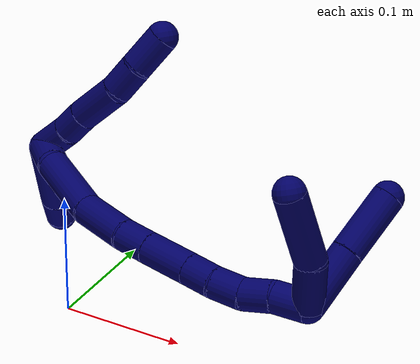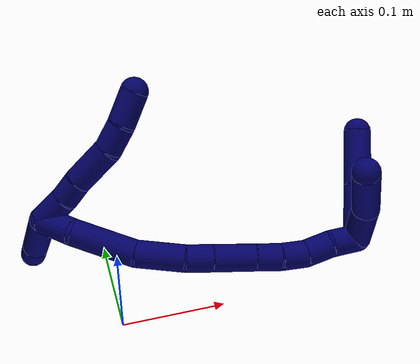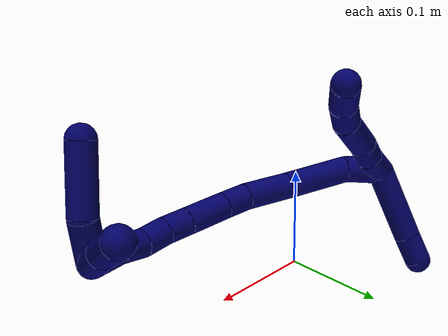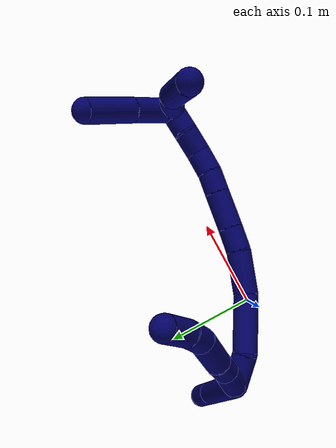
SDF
<sdf version="1.7">
 <world name="default">
  <model name="7">
   <static>0</static>
   <link name="7">
    <collision name="collision-cylinder-e_1_2_8">
     <pose>0.01378 -0.002626 0.005682 0.432896 1.14446 0.281402</pose>
     <geometry><cylinder><radius>0.0125</radius><length>0.03027</length></cylinder></geometry>
     <surface>
      <friction><ode><mu>1.16</mu><mu2>1.16</mu2><slip1>0</slip1><slip2>0</slip2></ode></friction>
      <contact><ode><kp>1e+06</kp><kd>1</kd><max_vel>0</max_vel><min_depth>0.001</min_depth></ode></contact>
     </surface>
    </collision>
    <visual name="visual-cylinder-e_1_2_8">
     <pose>0.01378 -0.002626 0.005682 0.432896 1.14446 0.281402</pose>
     <geometry><cylinder><radius>0.0125</radius><length>0.03027</length></cylinder></geometry>
     <material><ambient>0.003922 0 0.403922 1</ambient></material>
    </visual>
    <collision name="collision-cylinder-e_2_8_9">
     <pose>0.037048 -0.006541 0.016738 0.235481 1.04325 0.135755</pose>
     <geometry><cylinder><radius>0.0125</radius><length>0.02196</length></cylinder></geometry>
     <surface>
      <friction><ode><mu>1.16</mu><mu2>1.16</mu2><slip1>0</slip1><slip2>0</slip2></ode></friction>
      <contact><ode><kp>1e+06</kp><kd>1</kd><max_vel>0</max_vel><min_depth>0.001</min_depth></ode></contact>
     </surface>
    </collision>
    <visual name="visual-cylinder-e_2_8_9">
     <pose>0.037048 -0.006541 0.016738 0.235481 1.04325 0.135755</pose>
     <geometry><cylinder><radius>0.0125</radius><length>0.02196</length></cylinder></geometry>
     <material><ambient>0.003922 0 0.403922 1</ambient></material>
    </visual>
    <collision name="collision-cylinder-e_3_9_10">
     <pose>0.06524 -0.010865 0.030277 0.355898 1.13503 0.228303</pose>
     <geometry><cylinder><radius>0.0125</radius><length>0.041266</length></cylinder></geometry>
     <surface>
      <friction><ode><mu>1.16</mu><mu2>1.16</mu2><slip1>0</slip1><slip2>0</slip2></ode></friction>
      <contact><ode><kp>1e+06</kp><kd>1</kd><max_vel>0</max_vel><min_depth>0.001</min_depth></ode></contact>
     </surface>
    </collision>
    <visual name="visual-cylinder-e_3_9_10">
     <pose>0.06524 -0.010865 0.030277 0.355898 1.13503 0.228303</pose>
     <geometry><cylinder><radius>0.0125</radius><length>0.041266</length></cylinder></geometry>
     <material><ambient>0.003922 0 0.403922 1</ambient></material>
    </visual>
    <collision name="collision-cylinder-e_4_10_11">
     <pose>0.094259 -0.013683 0.046057 -0.028509 0.93451 -0.014384</pose>
     <geometry><cylinder><radius>0.0125</radius><length>0.025647</length></cylinder></geometry>
     <surface>
      <friction><ode><mu>1.16</mu><mu2>1.16</mu2><slip1>0</slip1><slip2>0</slip2></ode></friction>
      <contact><ode><kp>1e+06</kp><kd>1</kd><max_vel>0</max_vel><min_depth>0.001</min_depth></ode></contact>
     </surface>
    </collision>
    <visual name="visual-cylinder-e_4_10_11">
     <pose>0.094259 -0.013683 0.046057 -0.028509 0.93451 -0.014384</pose>
     <geometry><cylinder><radius>0.0125</radius><length>0.025647</length></cylinder></geometry>
     <material><ambient>0.003922 0 0.403922 1</ambient></material>
    </visual>
    <collision name="collision-cylinder-e_5_11_6">
     <pose>0.116257 -0.010536 0.063315 -0.29496 0.859147 -0.135901</pose>
     <geometry><cylinder><radius>0.0125</radius><length>0.030856</length></cylinder></geometry>
     <surface>
      <friction><ode><mu>1.16</mu><mu2>1.16</mu2><slip1>0</slip1><slip2>0</slip2></ode></friction>
      <contact><ode><kp>1e+06</kp><kd>1</kd><max_vel>0</max_vel><min_depth>0.001</min_depth></ode></contact>
     </surface>
    </collision>
    <visual name="visual-cylinder-e_5_11_6">
     <pose>0.116257 -0.010536 0.063315 -0.29496 0.859147 -0.135901</pose>
     <geometry><cylinder><radius>0.0125</radius><length>0.030856</length></cylinder></geometry>
     <material><ambient>0.003922 0 0.403922 1</ambient></material>
    </visual>
    <collision name="collision-cylinder-e_1_2_12">
     <pose>-0.014453 0.023588 -0.023024 -2.34409 -0.41322 0.923266</pose>
     <geometry><cylinder><radius>0.0125</radius><length>0.071983</length></cylinder></geometry>
     <surface>
      <friction><ode><mu>1.16</mu><mu2>1.16</mu2><slip1>0</slip1><slip2>0</slip2></ode></friction>
      <contact><ode><kp>1e+06</kp><kd>1</kd><max_vel>0</max_vel><min_depth>0.001</min_depth></ode></contact>
     </surface>
    </collision>
    <visual name="visual-cylinder-e_1_2_12">
     <pose>-0.014453 0.023588 -0.023024 -2.34409 -0.41322 0.923266</pose>
     <geometry><cylinder><radius>0.0125</radius><length>0.071983</length></cylinder></geometry>
     <material><ambient>0.003922 0 0.403922 1</ambient></material>
    </visual>
    <collision name="collision-cylinder-e_2_12_5">
     <pose>-0.034198 0.056798 -0.054746 -2.30582 -0.387426 0.832014</pose>
     <geometry><cylinder><radius>0.0125</radius><length>0.028017</length></cylinder></geometry>
     <surface>
      <friction><ode><mu>1.16</mu><mu2>1.16</mu2><slip1>0</slip1><slip2>0</slip2></ode></friction>
      <contact><ode><kp>1e+06</kp><kd>1</kd><max_vel>0</max_vel><min_depth>0.001</min_depth></ode></contact>
     </surface>
    </collision>
    <visual name="visual-cylinder-e_2_12_5">
     <pose>-0.034198 0.056798 -0.054746 -2.30582 -0.387426 0.832014</pose>
     <geometry><cylinder><radius>0.0125</radius><length>0.028017</length></cylinder></geometry>
     <material><ambient>0.003922 0 0.403922 1</ambient></material>
    </visual>
    <collision name="collision-cylinder-e_1_2_13">
     <pose>0.010403 -0.011668 -0.006465 2.07676 0.662362 1.05656</pose>
     <geometry><cylinder><radius>0.0125</radius><length>0.033832</length></cylinder></geometry>
     <surface>
      <friction><ode><mu>1.16</mu><mu2>1.16</mu2><slip1>0</slip1><slip2>0</slip2></ode></friction>
      <contact><ode><kp>1e+06</kp><kd>1</kd><max_vel>0</max_vel><min_depth>0.001</min_depth></ode></contact>
     </surface>
    </collision>
    <visual name="visual-cylinder-e_1_2_13">
     <pose>0.010403 -0.011668 -0.006465 2.07676 0.662362 1.05656</pose>
     <geometry><cylinder><radius>0.0125</radius><length>0.033832</length></cylinder></geometry>
     <material><ambient>0.003922 0 0.403922 1</ambient></material>
    </visual>
    <collision name="collision-cylinder-e_2_13_14">
     <pose>0.041294 -0.035834 -0.030307 2.51806 0.763487 1.78869</pose>
     <geometry><cylinder><radius>0.0125</radius><length>0.059262</length></cylinder></geometry>
     <surface>
      <friction><ode><mu>1.16</mu><mu2>1.16</mu2><slip1>0</slip1><slip2>0</slip2></ode></friction>
      <contact><ode><kp>1e+06</kp><kd>1</kd><max_vel>0</max_vel><min_depth>0.001</min_depth></ode></contact>
     </surface>
    </collision>
    <visual name="visual-cylinder-e_2_13_14">
     <pose>0.041294 -0.035834 -0.030307 2.51806 0.763487 1.78869</pose>
     <geometry><cylinder><radius>0.0125</radius><length>0.059262</length></cylinder></geometry>
     <material><ambient>0.003922 0 0.403922 1</ambient></material>
    </visual>
    <collision name="collision-cylinder-e_3_14_15">
     <pose>0.080403 -0.054881 -0.057886 2.57093 0.993772 2.14987</pose>
     <geometry><cylinder><radius>0.0125</radius><length>0.044435</length></cylinder></geometry>
     <surface>
      <friction><ode><mu>1.16</mu><mu2>1.16</mu2><slip1>0</slip1><slip2>0</slip2></ode></friction>
      <contact><ode><kp>1e+06</kp><kd>1</kd><max_vel>0</max_vel><min_depth>0.001</min_depth></ode></contact>
     </surface>
    </collision>
    <visual name="visual-cylinder-e_3_14_15">
     <pose>0.080403 -0.054881 -0.057886 2.57093 0.993772 2.14987</pose>
     <geometry><cylinder><radius>0.0125</radius><length>0.044435</length></cylinder></geometry>
     <material><ambient>0.003922 0 0.403922 1</ambient></material>
    </visual>
    <collision name="collision-cylinder-e_4_15_16">
     <pose>0.109917 -0.062987 -0.07379 2.87489 1.07347 2.69809</pose>
     <geometry><cylinder><radius>0.0125</radius><length>0.024791</length></cylinder></geometry>
     <surface>
      <friction><ode><mu>1.16</mu><mu2>1.16</mu2><slip1>0</slip1><slip2>0</slip2></ode></friction>
      <contact><ode><kp>1e+06</kp><kd>1</kd><max_vel>0</max_vel><min_depth>0.001</min_depth></ode></contact>
     </surface>
    </collision>
    <visual name="visual-cylinder-e_4_15_16">
     <pose>0.109917 -0.062987 -0.07379 2.87489 1.07347 2.69809</pose>
     <geometry><cylinder><radius>0.0125</radius><length>0.024791</length></cylinder></geometry>
     <material><ambient>0.003922 0 0.403922 1</ambient></material>
    </visual>
    <collision name="collision-cylinder-e_5_16_17">
     <pose>0.137908 -0.06657 -0.088402 2.91812 1.0801 2.77155</pose>
     <geometry><cylinder><radius>0.0125</radius><length>0.038768</length></cylinder></geometry>
     <surface>
      <friction><ode><mu>1.16</mu><mu2>1.16</mu2><slip1>0</slip1><slip2>0</slip2></ode></friction>
      <contact><ode><kp>1e+06</kp><kd>1</kd><max_vel>0</max_vel><min_depth>0.001</min_depth></ode></contact>
     </surface>
    </collision>
    <visual name="visual-cylinder-e_5_16_17">
     <pose>0.137908 -0.06657 -0.088402 2.91812 1.0801 2.77155</pose>
     <geometry><cylinder><radius>0.0125</radius><length>0.038768</length></cylinder></geometry>
     <material><ambient>0.003922 0 0.403922 1</ambient></material>
    </visual>
    <collision name="collision-cylinder-e_6_17_18">
     <pose>0.165182 -0.069919 -0.102673 2.89948 1.07347 2.73823</pose>
     <geometry><cylinder><radius>0.0125</radius><length>0.02316</length></cylinder></geometry>
     <surface>
      <friction><ode><mu>1.16</mu><mu2>1.16</mu2><slip1>0</slip1><slip2>0</slip2></ode></friction>
      <contact><ode><kp>1e+06</kp><kd>1</kd><max_vel>0</max_vel><min_depth>0.001</min_depth></ode></contact>
     </surface>
    </collision>
    <visual name="visual-cylinder-e_6_17_18">
     <pose>0.165182 -0.069919 -0.102673 2.89948 1.07347 2.73823</pose>
     <geometry><cylinder><radius>0.0125</radius><length>0.02316</length></cylinder></geometry>
     <material><ambient>0.003922 0 0.403922 1</ambient></material>
    </visual>
    <collision name="collision-cylinder-e_7_18_19">
     <pose>0.186359 -0.070745 -0.113291 -3.04703 1.12343 -2.9915</pose>
     <geometry><cylinder><radius>0.0125</radius><length>0.024402</length></cylinder></geometry>
     <surface>
      <friction><ode><mu>1.16</mu><mu2>1.16</mu2><slip1>0</slip1><slip2>0</slip2></ode></friction>
      <contact><ode><kp>1e+06</kp><kd>1</kd><max_vel>0</max_vel><min_depth>0.001</min_depth></ode></contact>
     </surface>
    </collision>
    <visual name="visual-cylinder-e_7_18_19">
     <pose>0.186359 -0.070745 -0.113291 -3.04703 1.12343 -2.9915</pose>
     <geometry><cylinder><radius>0.0125</radius><length>0.024402</length></cylinder></geometry>
     <material><ambient>0.003922 0 0.403922 1</ambient></material>
    </visual>
    <collision name="collision-cylinder-e_8_19_20">
     <pose>0.209618 -0.069909 -0.120386 -2.96021 1.41931 -2.93062</pose>
     <geometry><cylinder><radius>0.0125</radius><length>0.024802</length></cylinder></geometry>
     <surface>
      <friction><ode><mu>1.16</mu><mu2>1.16</mu2><slip1>0</slip1><slip2>0</slip2></ode></friction>
      <contact><ode><kp>1e+06</kp><kd>1</kd><max_vel>0</max_vel><min_depth>0.001</min_depth></ode></contact>
     </surface>
    </collision>
    <visual name="visual-cylinder-e_8_19_20">
     <pose>0.209618 -0.069909 -0.120386 -2.96021 1.41931 -2.93062</pose>
     <geometry><cylinder><radius>0.0125</radius><length>0.024802</length></cylinder></geometry>
     <material><ambient>0.003922 0 0.403922 1</ambient></material>
    </visual>
    <collision name="collision-cylinder-e_9_20_1">
     <pose>0.234231 -0.068518 -0.126967 -2.92295 1.1963 -2.8222</pose>
     <geometry><cylinder><radius>0.0125</radius><length>0.026548</length></cylinder></geometry>
     <surface>
      <friction><ode><mu>1.16</mu><mu2>1.16</mu2><slip1>0</slip1><slip2>0</slip2></ode></friction>
      <contact><ode><kp>1e+06</kp><kd>1</kd><max_vel>0</max_vel><min_depth>0.001</min_depth></ode></contact>
     </surface>
    </collision>
    <visual name="visual-cylinder-e_9_20_1">
     <pose>0.234231 -0.068518 -0.126967 -2.92295 1.1963 -2.8222</pose>
     <geometry><cylinder><radius>0.0125</radius><length>0.026548</length></cylinder></geometry>
     <material><ambient>0.003922 0 0.403922 1</ambient></material>
    </visual>
    <collision name="collision-cylinder-e_1_1_21">
     <pose>0.253998 -0.074146 -0.114436 0.369115 0.380759 0.071921</pose>
     <geometry><cylinder><radius>0.0125</radius><length>0.039892</length></cylinder></geometry>
     <surface>
      <friction><ode><mu>1.16</mu><mu2>1.16</mu2><slip1>0</slip1><slip2>0</slip2></ode></friction>
      <contact><ode><kp>1e+06</kp><kd>1</kd><max_vel>0</max_vel><min_depth>0.001</min_depth></ode></contact>
     </surface>
    </collision>
    <visual name="visual-cylinder-e_1_1_21">
     <pose>0.253998 -0.074146 -0.114436 0.369115 0.380759 0.071921</pose>
     <geometry><cylinder><radius>0.0125</radius><length>0.039892</length></cylinder></geometry>
     <material><ambient>0.003922 0 0.403922 1</ambient></material>
    </visual>
    <collision name="collision-cylinder-e_2_21_4">
     <pose>0.264316 -0.094538 -0.07058 0.476152 0.096833 0.023517</pose>
     <geometry><cylinder><radius>0.0125</radius><length>0.060108</length></cylinder></geometry>
     <surface>
      <friction><ode><mu>1.16</mu><mu2>1.16</mu2><slip1>0</slip1><slip2>0</slip2></ode></friction>
      <contact><ode><kp>1e+06</kp><kd>1</kd><max_vel>0</max_vel><min_depth>0.001</min_depth></ode></contact>
     </surface>
    </collision>
    <visual name="visual-cylinder-e_2_21_4">
     <pose>0.264316 -0.094538 -0.07058 0.476152 0.096833 0.023517</pose>
     <geometry><cylinder><radius>0.0125</radius><length>0.060108</length></cylinder></geometry>
     <material><ambient>0.003922 0 0.403922 1</ambient></material>
    </visual>
    <collision name="collision-cylinder-e_1_1_22">
     <pose>0.258556 -0.053833 -0.115283 -0.692775 0.511103 -0.188045</pose>
     <geometry><cylinder><radius>0.0125</radius><length>0.048944</length></cylinder></geometry>
     <surface>
      <friction><ode><mu>1.16</mu><mu2>1.16</mu2><slip1>0</slip1><slip2>0</slip2></ode></friction>
      <contact><ode><kp>1e+06</kp><kd>1</kd><max_vel>0</max_vel><min_depth>0.001</min_depth></ode></contact>
     </surface>
    </collision>
    <visual name="visual-cylinder-e_1_1_22">
     <pose>0.258556 -0.053833 -0.115283 -0.692775 0.511103 -0.188045</pose>
     <geometry><cylinder><radius>0.0125</radius><length>0.048944</length></cylinder></geometry>
     <material><ambient>0.003922 0 0.403922 1</ambient></material>
    </visual>
    <collision name="collision-cylinder-e_2_22_3">
     <pose>0.282739 -0.025062 -0.082325 -0.741409 0.498846 -0.197369</pose>
     <geometry><cylinder><radius>0.0125</radius><length>0.051056</length></cylinder></geometry>
     <surface>
      <friction><ode><mu>1.16</mu><mu2>1.16</mu2><slip1>0</slip1><slip2>0</slip2></ode></friction>
      <contact><ode><kp>1e+06</kp><kd>1</kd><max_vel>0</max_vel><min_depth>0.001</min_depth></ode></contact>
     </surface>
    </collision>
    <visual name="visual-cylinder-e_2_22_3">
     <pose>0.282739 -0.025062 -0.082325 -0.741409 0.498846 -0.197369</pose>
     <geometry><cylinder><radius>0.0125</radius><length>0.051056</length></cylinder></geometry>
     <material><ambient>0.003922 0 0.403922 1</ambient></material>
    </visual>
    <collision name="collision-sphere-3">
     <pose>0.294952 -0.009923 -0.065793 0 -0 0</pose>
     <geometry><sphere><radius>0.0125</radius></sphere></geometry>
     <surface>
      <friction><ode><mu>1.16</mu><mu2>1.16</mu2><slip1>0</slip1><slip2>0</slip2></ode></friction>
      <contact><ode><kp>1e+06</kp><kd>1</kd><max_vel>0</max_vel><min_depth>0.001</min_depth></ode></contact>
     </surface>
    </collision>
    <visual name="visual-sphere-3">
     <pose>0.294952 -0.009923 -0.065793 0 -0 0</pose>
     <geometry><sphere><radius>0.0125</radius></sphere></geometry>
     <material><ambient>0.003922 0 0.403922 1</ambient></material>
    </visual>
    <collision name="collision-sphere-22">
     <pose>0.270526 -0.0402 -0.098858 0 -0 0</pose>
     <geometry><sphere><radius>0.0125</radius></sphere></geometry>
     <surface>
      <friction><ode><mu>1.16</mu><mu2>1.16</mu2><slip1>0</slip1><slip2>0</slip2></ode></friction>
      <contact><ode><kp>1e+06</kp><kd>1</kd><max_vel>0</max_vel><min_depth>0.001</min_depth></ode></contact>
     </surface>
    </collision>
    <visual name="visual-sphere-22">
     <pose>0.270526 -0.0402 -0.098858 0 -0 0</pose>
     <geometry><sphere><radius>0.0125</radius></sphere></geometry>
     <material><ambient>0.003922 0 0.403922 1</ambient></material>
    </visual>
    <collision name="collision-sphere-4">
     <pose>0.267222 -0.108249 -0.043995 0 -0 0</pose>
     <geometry><sphere><radius>0.0125</radius></sphere></geometry>
     <surface>
      <friction><ode><mu>1.16</mu><mu2>1.16</mu2><slip1>0</slip1><slip2>0</slip2></ode></friction>
      <contact><ode><kp>1e+06</kp><kd>1</kd><max_vel>0</max_vel><min_depth>0.001</min_depth></ode></contact>
     </surface>
    </collision>
    <visual name="visual-sphere-4">
     <pose>0.267222 -0.108249 -0.043995 0 -0 0</pose>
     <geometry><sphere><radius>0.0125</radius></sphere></geometry>
     <material><ambient>0.003922 0 0.403922 1</ambient></material>
    </visual>
    <collision name="collision-sphere-21">
     <pose>0.26141 -0.080827 -0.097166 0 -0 0</pose>
     <geometry><sphere><radius>0.0125</radius></sphere></geometry>
     <surface>
      <friction><ode><mu>1.16</mu><mu2>1.16</mu2><slip1>0</slip1><slip2>0</slip2></ode></friction>
      <contact><ode><kp>1e+06</kp><kd>1</kd><max_vel>0</max_vel><min_depth>0.001</min_depth></ode></contact>
     </surface>
    </collision>
    <visual name="visual-sphere-21">
     <pose>0.26141 -0.080827 -0.097166 0 -0 0</pose>
     <geometry><sphere><radius>0.0125</radius></sphere></geometry>
     <material><ambient>0.003922 0 0.403922 1</ambient></material>
    </visual>
    <collision name="collision-sphere-1">
     <pose>0.246585 -0.067465 -0.131707 0 -0 0</pose>
     <geometry><sphere><radius>0.0125</radius></sphere></geometry>
     <surface>
      <friction><ode><mu>1.16</mu><mu2>1.16</mu2><slip1>0</slip1><slip2>0</slip2></ode></friction>
      <contact><ode><kp>1e+06</kp><kd>1</kd><max_vel>0</max_vel><min_depth>0.001</min_depth></ode></contact>
     </surface>
    </collision>
    <visual name="visual-sphere-1">
     <pose>0.246585 -0.067465 -0.131707 0 -0 0</pose>
     <geometry><sphere><radius>0.0125</radius></sphere></geometry>
     <material><ambient>0.003922 0 0.403922 1</ambient></material>
    </visual>
    <collision name="collision-sphere-6">
     <pose>0.12794 -0.007607 0.072955 0 -0 0</pose>
     <geometry><sphere><radius>0.0125</radius></sphere></geometry>
     <surface>
      <friction><ode><mu>1.16</mu><mu2>1.16</mu2><slip1>0</slip1><slip2>0</slip2></ode></friction>
      <contact><ode><kp>1e+06</kp><kd>1</kd><max_vel>0</max_vel><min_depth>0.001</min_depth></ode></contact>
     </surface>
    </collision>
    <visual name="visual-sphere-6">
     <pose>0.12794 -0.007607 0.072955 0 -0 0</pose>
     <geometry><sphere><radius>0.0125</radius></sphere></geometry>
     <material><ambient>0.003922 0 0.403922 1</ambient></material>
    </visual>
    <collision name="collision-sphere-11">
     <pose>0.104573 -0.013465 0.053674 0 -0 0</pose>
     <geometry><sphere><radius>0.0125</radius></sphere></geometry>
     <surface>
      <friction><ode><mu>1.16</mu><mu2>1.16</mu2><slip1>0</slip1><slip2>0</slip2></ode></friction>
      <contact><ode><kp>1e+06</kp><kd>1</kd><max_vel>0</max_vel><min_depth>0.001</min_depth></ode></contact>
     </surface>
    </collision>
    <visual name="visual-sphere-11">
     <pose>0.104573 -0.013465 0.053674 0 -0 0</pose>
     <geometry><sphere><radius>0.0125</radius></sphere></geometry>
     <material><ambient>0.003922 0 0.403922 1</ambient></material>
    </visual>
    <collision name="collision-sphere-10">
     <pose>0.083945 -0.0139 0.03844 0 -0 0</pose>
     <geometry><sphere><radius>0.0125</radius></sphere></geometry>
     <surface>
      <friction><ode><mu>1.16</mu><mu2>1.16</mu2><slip1>0</slip1><slip2>0</slip2></ode></friction>
      <contact><ode><kp>1e+06</kp><kd>1</kd><max_vel>0</max_vel><min_depth>0.001</min_depth></ode></contact>
     </surface>
    </collision>
    <visual name="visual-sphere-10">
     <pose>0.083945 -0.0139 0.03844 0 -0 0</pose>
     <geometry><sphere><radius>0.0125</radius></sphere></geometry>
     <material><ambient>0.003922 0 0.403922 1</ambient></material>
    </visual>
    <collision name="collision-sphere-9">
     <pose>0.046535 -0.007831 0.022113 0 -0 0</pose>
     <geometry><sphere><radius>0.0125</radius></sphere></geometry>
     <surface>
      <friction><ode><mu>1.16</mu><mu2>1.16</mu2><slip1>0</slip1><slip2>0</slip2></ode></friction>
      <contact><ode><kp>1e+06</kp><kd>1</kd><max_vel>0</max_vel><min_depth>0.001</min_depth></ode></contact>
     </surface>
    </collision>
    <visual name="visual-sphere-9">
     <pose>0.046535 -0.007831 0.022113 0 -0 0</pose>
     <geometry><sphere><radius>0.0125</radius></sphere></geometry>
     <material><ambient>0.003922 0 0.403922 1</ambient></material>
    </visual>
    <collision name="collision-sphere-2">
     <geometry><sphere><radius>0.0125</radius></sphere></geometry>
     <surface>
      <friction><ode><mu>1.16</mu><mu2>1.16</mu2><slip1>0</slip1><slip2>0</slip2></ode></friction>
      <contact><ode><kp>1e+06</kp><kd>1</kd><max_vel>0</max_vel><min_depth>0.001</min_depth></ode></contact>
     </surface>
    </collision>
    <visual name="visual-sphere-2">
     <geometry><sphere><radius>0.0125</radius></sphere></geometry>
     <material><ambient>0.003922 0 0.403922 1</ambient></material>
    </visual>
    <collision name="collision-sphere-19">
     <pose>0.197359 -0.070247 -0.118545 0 -0 0</pose>
     <geometry><sphere><radius>0.0125</radius></sphere></geometry>
     <surface>
      <friction><ode><mu>1.16</mu><mu2>1.16</mu2><slip1>0</slip1><slip2>0</slip2></ode></friction>
      <contact><ode><kp>1e+06</kp><kd>1</kd><max_vel>0</max_vel><min_depth>0.001</min_depth></ode></contact>
     </surface>
    </collision>
    <visual name="visual-sphere-19">
     <pose>0.197359 -0.070247 -0.118545 0 -0 0</pose>
     <geometry><sphere><radius>0.0125</radius></sphere></geometry>
     <material><ambient>0.003922 0 0.403922 1</ambient></material>
    </visual>
    <collision name="collision-sphere-8">
     <pose>0.027561 -0.005251 0.011363 0 -0 0</pose>
     <geometry><sphere><radius>0.0125</radius></sphere></geometry>
     <surface>
      <friction><ode><mu>1.16</mu><mu2>1.16</mu2><slip1>0</slip1><slip2>0</slip2></ode></friction>
      <contact><ode><kp>1e+06</kp><kd>1</kd><max_vel>0</max_vel><min_depth>0.001</min_depth></ode></contact>
     </surface>
    </collision>
    <visual name="visual-sphere-8">
     <pose>0.027561 -0.005251 0.011363 0 -0 0</pose>
     <geometry><sphere><radius>0.0125</radius></sphere></geometry>
     <material><ambient>0.003922 0 0.403922 1</ambient></material>
    </visual>
    <collision name="collision-sphere-12">
     <pose>-0.028905 0.047176 -0.046048 0 -0 0</pose>
     <geometry><sphere><radius>0.0125</radius></sphere></geometry>
     <surface>
      <friction><ode><mu>1.16</mu><mu2>1.16</mu2><slip1>0</slip1><slip2>0</slip2></ode></friction>
      <contact><ode><kp>1e+06</kp><kd>1</kd><max_vel>0</max_vel><min_depth>0.001</min_depth></ode></contact>
     </surface>
    </collision>
    <visual name="visual-sphere-12">
     <pose>-0.028905 0.047176 -0.046048 0 -0 0</pose>
     <geometry><sphere><radius>0.0125</radius></sphere></geometry>
     <material><ambient>0.003922 0 0.403922 1</ambient></material>
    </visual>
    <collision name="collision-sphere-5">
     <pose>-0.039491 0.066419 -0.063444 0 -0 0</pose>
     <geometry><sphere><radius>0.0125</radius></sphere></geometry>
     <surface>
      <friction><ode><mu>1.16</mu><mu2>1.16</mu2><slip1>0</slip1><slip2>0</slip2></ode></friction>
      <contact><ode><kp>1e+06</kp><kd>1</kd><max_vel>0</max_vel><min_depth>0.001</min_depth></ode></contact>
     </surface>
    </collision>
    <visual name="visual-sphere-5">
     <pose>-0.039491 0.066419 -0.063444 0 -0 0</pose>
     <geometry><sphere><radius>0.0125</radius></sphere></geometry>
     <material><ambient>0.003922 0 0.403922 1</ambient></material>
    </visual>
    <collision name="collision-sphere-13">
     <pose>0.020806 -0.023335 -0.012929 0 -0 0</pose>
     <geometry><sphere><radius>0.0125</radius></sphere></geometry>
     <surface>
      <friction><ode><mu>1.16</mu><mu2>1.16</mu2><slip1>0</slip1><slip2>0</slip2></ode></friction>
      <contact><ode><kp>1e+06</kp><kd>1</kd><max_vel>0</max_vel><min_depth>0.001</min_depth></ode></contact>
     </surface>
    </collision>
    <visual name="visual-sphere-13">
     <pose>0.020806 -0.023335 -0.012929 0 -0 0</pose>
     <geometry><sphere><radius>0.0125</radius></sphere></geometry>
     <material><ambient>0.003922 0 0.403922 1</ambient></material>
    </visual>
    <collision name="collision-sphere-14">
     <pose>0.061782 -0.048334 -0.047686 0 -0 0</pose>
     <geometry><sphere><radius>0.0125</radius></sphere></geometry>
     <surface>
      <friction><ode><mu>1.16</mu><mu2>1.16</mu2><slip1>0</slip1><slip2>0</slip2></ode></friction>
      <contact><ode><kp>1e+06</kp><kd>1</kd><max_vel>0</max_vel><min_depth>0.001</min_depth></ode></contact>
     </surface>
    </collision>
    <visual name="visual-sphere-14">
     <pose>0.061782 -0.048334 -0.047686 0 -0 0</pose>
     <geometry><sphere><radius>0.0125</radius></sphere></geometry>
     <material><ambient>0.003922 0 0.403922 1</ambient></material>
    </visual>
    <collision name="collision-sphere-15">
     <pose>0.099023 -0.061428 -0.068085 0 -0 0</pose>
     <geometry><sphere><radius>0.0125</radius></sphere></geometry>
     <surface>
      <friction><ode><mu>1.16</mu><mu2>1.16</mu2><slip1>0</slip1><slip2>0</slip2></ode></friction>
      <contact><ode><kp>1e+06</kp><kd>1</kd><max_vel>0</max_vel><min_depth>0.001</min_depth></ode></contact>
     </surface>
    </collision>
    <visual name="visual-sphere-15">
     <pose>0.099023 -0.061428 -0.068085 0 -0 0</pose>
     <geometry><sphere><radius>0.0125</radius></sphere></geometry>
     <material><ambient>0.003922 0 0.403922 1</ambient></material>
    </visual>
    <collision name="collision-sphere-16">
     <pose>0.120811 -0.064546 -0.079495 0 -0 0</pose>
     <geometry><sphere><radius>0.0125</radius></sphere></geometry>
     <surface>
      <friction><ode><mu>1.16</mu><mu2>1.16</mu2><slip1>0</slip1><slip2>0</slip2></ode></friction>
      <contact><ode><kp>1e+06</kp><kd>1</kd><max_vel>0</max_vel><min_depth>0.001</min_depth></ode></contact>
     </surface>
    </collision>
    <visual name="visual-sphere-16">
     <pose>0.120811 -0.064546 -0.079495 0 -0 0</pose>
     <geometry><sphere><radius>0.0125</radius></sphere></geometry>
     <material><ambient>0.003922 0 0.403922 1</ambient></material>
    </visual>
    <collision name="collision-sphere-17">
     <pose>0.155005 -0.068594 -0.09731 0 -0 0</pose>
     <geometry><sphere><radius>0.0125</radius></sphere></geometry>
     <surface>
      <friction><ode><mu>1.16</mu><mu2>1.16</mu2><slip1>0</slip1><slip2>0</slip2></ode></friction>
      <contact><ode><kp>1e+06</kp><kd>1</kd><max_vel>0</max_vel><min_depth>0.001</min_depth></ode></contact>
     </surface>
    </collision>
    <visual name="visual-sphere-17">
     <pose>0.155005 -0.068594 -0.09731 0 -0 0</pose>
     <geometry><sphere><radius>0.0125</radius></sphere></geometry>
     <material><ambient>0.003922 0 0.403922 1</ambient></material>
    </visual>
    <collision name="collision-sphere-18">
     <pose>0.175359 -0.071243 -0.108036 0 -0 0</pose>
     <geometry><sphere><radius>0.0125</radius></sphere></geometry>
     <surface>
      <friction><ode><mu>1.16</mu><mu2>1.16</mu2><slip1>0</slip1><slip2>0</slip2></ode></friction>
      <contact><ode><kp>1e+06</kp><kd>1</kd><max_vel>0</max_vel><min_depth>0.001</min_depth></ode></contact>
     </surface>
    </collision>
    <visual name="visual-sphere-18">
     <pose>0.175359 -0.071243 -0.108036 0 -0 0</pose>
     <geometry><sphere><radius>0.0125</radius></sphere></geometry>
     <material><ambient>0.003922 0 0.403922 1</ambient></material>
    </visual>
    <collision name="collision-sphere-20">
     <pose>0.221877 -0.069571 -0.122227 0 -0 0</pose>
     <geometry><sphere><radius>0.0125</radius></sphere></geometry>
     <surface>
      <friction><ode><mu>1.16</mu><mu2>1.16</mu2><slip1>0</slip1><slip2>0</slip2></ode></friction>
      <contact><ode><kp>1e+06</kp><kd>1</kd><max_vel>0</max_vel><min_depth>0.001</min_depth></ode></contact>
     </surface>
    </collision>
    <visual name="visual-sphere-20">
     <pose>0.221877 -0.069571 -0.122227 0 -0 0</pose>
     <geometry><sphere><radius>0.0125</radius></sphere></geometry>
     <material><ambient>0.003922 0 0.403922 1</ambient></material>
    </visual>
    <inertial>
     <pose>0.127031 -0.035481 -0.051017 0 -0 0</pose>
     <mass>0.75</mass>
     <inertia>
      <ixx>0.000145</ixx>
      <ixy>0</ixy>
      <ixz>0</ixz>
      <iyy>0.00014</iyy>
      <iyz>0</iyz>
      <izz>-6.6e-05</izz>
     </inertia>
    </inertial>
   </link>
   <pose>-0.056633 0.059065 0.101855 -0.317262 -0.333221 0.098927</pose>
  </model>
 </world>
</sdf>
